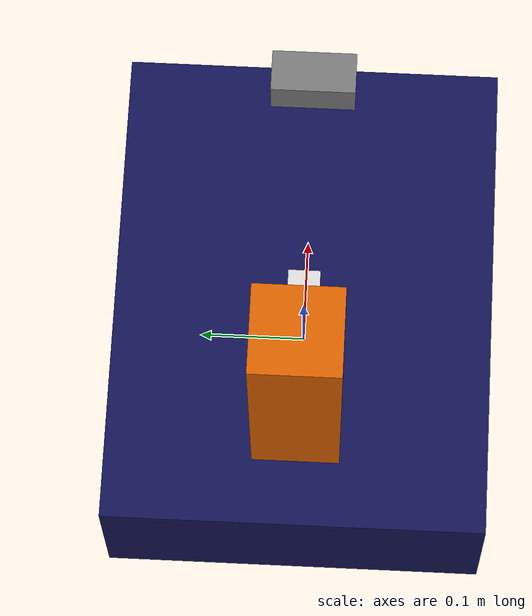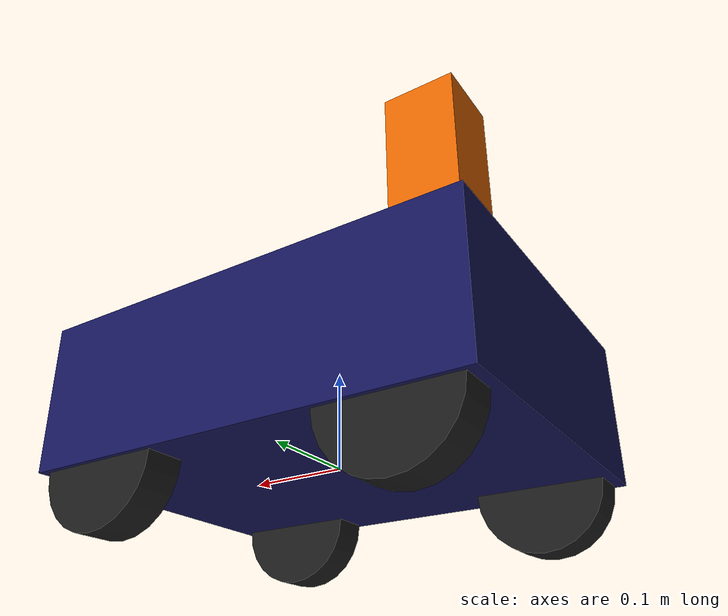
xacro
<?xml version="1.0"?>
<robot name="robot" xmlns:xacro="http://www.ros.org/wiki/xacro">

  <xacro:property name="base_length"  value="0.45"/>
  <xacro:property name="base_width"   value="0.35"/>
  <xacro:property name="base_height"  value="0.15"/>
  <xacro:property name="wheel_radius" value="0.065"/>
  <xacro:property name="wheel_width"  value="0.04"/>
  <xacro:property name="track_width"  value="0.30"/>
  <xacro:property name="wheel_x_off"  value="0.15"/>

  <!-- ================================================================
       base_footprint (punto en el suelo)
       ================================================================ -->
  <link name="base_footprint"/>

  <joint name="base_footprint_joint" type="fixed">
    <parent link="base_footprint"/>
    <child  link="base_link"/>
    <origin xyz="0 0 ${wheel_radius}" rpy="0 0 0"/>
  </joint>

  <!-- ================================================================
       Cuerpo principal
       ================================================================ -->
  <link name="base_link">
    <visual>
      <origin xyz="0 0 0" rpy="0 0 0"/>
      <geometry>
        <box size="${base_length} ${base_width} ${base_height}"/>
      </geometry>
      <material name="dark_blue">
        <color rgba="0.08 0.08 0.35 1.0"/>
      </material>
    </visual>
    <collision>
      <geometry>
        <box size="${base_length} ${base_width} ${base_height}"/>
      </geometry>
    </collision>
    <inertial>
      <mass value="6.0"/>
      <origin xyz="0 0 0"/>
      <inertia
        ixx="${(1/12)*6.0*(base_width*base_width + base_height*base_height)}"
        ixy="0" ixz="0"
        iyy="${(1/12)*6.0*(base_length*base_length + base_height*base_height)}"
        iyz="0"
        izz="${(1/12)*6.0*(base_length*base_length + base_width*base_width)}"/>
    </inertial>
  </link>

  <!-- ================================================================
       Macro rueda
       ================================================================ -->
  <xacro:macro name="wheel" params="name x_pos y_pos">

    <link name="${name}_link">
      <visual>
        <origin xyz="0 0 0" rpy="${pi/2} 0 0"/>
        <geometry>
          <cylinder radius="${wheel_radius}" length="${wheel_width}"/>
        </geometry>
        <material name="black">
          <color rgba="0.1 0.1 0.1 1.0"/>
        </material>
      </visual>
      <collision>
        <origin xyz="0 0 0" rpy="${pi/2} 0 0"/>
        <geometry>
          <cylinder radius="${wheel_radius}" length="${wheel_width}"/>
        </geometry>
      </collision>
      <inertial>
        <mass value="0.5"/>
        <origin xyz="0 0 0" rpy="${pi/2} 0 0"/>
        <inertia
          ixx="${(1/12)*0.5*(3*wheel_radius*wheel_radius + wheel_width*wheel_width)}"
          ixy="0" ixz="0"
          iyy="${(1/12)*0.5*(3*wheel_radius*wheel_radius + wheel_width*wheel_width)}"
          iyz="0"
          izz="${0.5*0.5*wheel_radius*wheel_radius}"/>
      </inertial>
    </link>

    <joint name="${name}_joint" type="continuous">
      <parent link="base_link"/>
      <child  link="${name}_link"/>
      <origin xyz="${x_pos} ${y_pos} ${-(base_height/2)}" rpy="0 0 0"/>
      <axis xyz="0 1 0"/>
    </joint>

    <gazebo reference="${name}_link">
      <mu1>1.0</mu1>
      <mu2>1.0</mu2>
      <kp>1e6</kp>
      <kd>1.0</kd>
      <material>Gazebo/DarkGrey</material>
    </gazebo>

  </xacro:macro>

  <xacro:wheel name="wheel_fl" x_pos=" ${wheel_x_off}" y_pos=" ${track_width/2}"/>
  <xacro:wheel name="wheel_fr" x_pos=" ${wheel_x_off}" y_pos="${-track_width/2}"/>
  <xacro:wheel name="wheel_rl" x_pos="${-wheel_x_off}" y_pos=" ${track_width/2}"/>
  <xacro:wheel name="wheel_rr" x_pos="${-wheel_x_off}" y_pos="${-track_width/2}"/>

  <!-- ================================================================
       Cámara
       ================================================================ -->
  <link name="camera_link">
    <visual>
      <geometry><box size="0.04 0.08 0.04"/></geometry>
      <material name="grey"><color rgba="0.5 0.5 0.5 1.0"/></material>
    </visual>
    <collision>
      <geometry><box size="0.04 0.08 0.04"/></geometry>
    </collision>
    <inertial>
      <mass value="0.05"/>
      <inertia ixx="0.0001" ixy="0" ixz="0" iyy="0.0001" iyz="0" izz="0.0001"/>
    </inertial>
  </link>

  <joint name="camera_joint" type="fixed">
    <parent link="base_link"/>
    <child  link="camera_link"/>
    <origin xyz="${base_length/2 - 0.02} 0 ${base_height/2 + 0.02}" rpy="0 0 0"/>
  </joint>

  <!-- Frame optico (Z adelante, X derecha) -->
  <link name="camera_optical_link"/>
  <joint name="camera_optical_joint" type="fixed">
    <parent link="camera_link"/>
    <child  link="camera_optical_link"/>
    <origin xyz="0 0 0" rpy="${-pi/2} 0 ${-pi/2}"/>
  </joint>

  <!-- ================================================================
       IMU
       ================================================================ -->
  <link name="imu_link">
    <inertial>
      <mass value="0.01"/>
      <inertia ixx="1e-6" ixy="0" ixz="0" iyy="1e-6" iyz="0" izz="1e-6"/>
    </inertial>
  </link>
  <joint name="imu_joint" type="fixed">
    <parent link="base_link"/>
    <child  link="imu_link"/>
    <origin xyz="0 0 0" rpy="0 0 0"/>
  </joint>

  <!-- ================================================================
       GPS
       ================================================================ -->
  <link name="gps_link">
    <visual>
      <geometry><box size="0.03 0.03 0.01"/></geometry>
      <material name="white"><color rgba="0.9 0.9 0.9 1.0"/></material>
    </visual>
    <inertial>
      <mass value="0.02"/>
      <inertia ixx="1e-6" ixy="0" ixz="0" iyy="1e-6" iyz="0" izz="1e-6"/>
    </inertial>
  </link>
  <joint name="gps_joint" type="fixed">
    <parent link="base_link"/>
    <child  link="gps_link"/>
    <origin xyz="0 0 ${base_height/2 + 0.01}" rpy="0 0 0"/>
  </joint>

  <!-- ================================================================
       Brazo SO101 (placeholder visual)
       ================================================================ -->
  <link name="arm_base_link">
    <visual>
      <geometry><box size="0.08 0.08 0.25"/></geometry>
      <material name="orange"><color rgba="0.9 0.4 0.0 1.0"/></material>
    </visual>
    <collision>
      <geometry><box size="0.08 0.08 0.25"/></geometry>
    </collision>
    <inertial>
      <mass value="0.8"/>
      <inertia ixx="0.005" ixy="0" ixz="0" iyy="0.005" iyz="0" izz="0.001"/>
    </inertial>
  </link>
  <joint name="arm_base_joint" type="fixed">
    <parent link="base_link"/>
    <child  link="arm_base_link"/>
    <origin xyz="${-base_length/2 + 0.1} 0 ${base_height/2 + 0.125}" rpy="0 0 0"/>
  </joint>

  <!-- ================================================================
       Gazebo — Plugin conduccion diferencial (4 ruedas)
       ================================================================ -->
  <gazebo>
    <plugin name="differential_drive" filename="libgazebo_ros_diff_drive.so">
      <ros>
        <remapping>cmd_vel:=cmd_vel</remapping>
        <remapping>odom:=odom</remapping>
      </ros>

      <!-- Gazebo Classic solo soporta un joint por lado.
           Las ruedas traseras giran pasivamente por friccion. -->
      <left_joint>wheel_fl_joint</left_joint>
      <right_joint>wheel_fr_joint</right_joint>

      <wheel_separation>${track_width}</wheel_separation>
      <wheel_diameter>${2 * wheel_radius}</wheel_diameter>
      <max_wheel_torque>20.0</max_wheel_torque>
      <max_wheel_acceleration>2.0</max_wheel_acceleration>

      <publish_odom>true</publish_odom>
      <publish_odom_tf>true</publish_odom_tf>
      <publish_wheel_tf>false</publish_wheel_tf>
      <odometry_frame>odom</odometry_frame>
      <robot_base_frame>base_footprint</robot_base_frame>
    </plugin>
  </gazebo>

  <!-- ================================================================
       Gazebo — Camara RGB
       ================================================================ -->
  <gazebo reference="camera_link">
    <sensor name="camera_sensor" type="camera">
      <always_on>true</always_on>
      <update_rate>30.0</update_rate>
      <visualize>true</visualize>
      <camera>
        <horizontal_fov>1.3962634</horizontal_fov>
        <image>
          <width>640</width>
          <height>480</height>
          <format>R8G8B8</format>
        </image>
        <clip><near>0.05</near><far>100.0</far></clip>
        <noise>
          <type>gaussian</type>
          <mean>0.0</mean>
          <stddev>0.005</stddev>
        </noise>
      </camera>
      <plugin name="camera_plugin" filename="libgazebo_ros_camera.so">
        <ros>
          <remapping>image_raw:=camera/image_raw</remapping>
          <remapping>camera_info:=camera/camera_info</remapping>
        </ros>
        <camera_name>camera</camera_name>
        <frame_name>camera_optical_link</frame_name>
      </plugin>
    </sensor>
  </gazebo>

  <gazebo reference="imu_link">
    <sensor name="imu_sensor" type="imu">
      <always_on>true</always_on>
      <update_rate>100.0</update_rate>
      <imu>
        <angular_velocity>
          <x><noise type="gaussian"><mean>0.0</mean><stddev>0.009</stddev><bias_mean>0.0</bias_mean><bias_stddev>0.0003</bias_stddev></noise></x>
          <y><noise type="gaussian"><mean>0.0</mean><stddev>0.009</stddev><bias_mean>0.0</bias_mean><bias_stddev>0.0003</bias_stddev></noise></y>
          <z><noise type="gaussian"><mean>0.0</mean><stddev>0.009</stddev><bias_mean>0.0</bias_mean><bias_stddev>0.0003</bias_stddev></noise></z>
        </angular_velocity>
        <linear_acceleration>
          <x><noise type="gaussian"><mean>0.0</mean><stddev>0.02</stddev><bias_mean>0.1</bias_mean><bias_stddev>0.001</bias_stddev></noise></x>
          <y><noise type="gaussian"><mean>0.0</mean><stddev>0.02</stddev><bias_mean>0.1</bias_mean><bias_stddev>0.001</bias_stddev></noise></y>
          <z><noise type="gaussian"><mean>0.0</mean><stddev>0.02</stddev><bias_mean>0.1</bias_mean><bias_stddev>0.001</bias_stddev></noise></z>
        </linear_acceleration>
      </imu>
      <plugin name="imu_plugin" filename="libgazebo_ros_imu_sensor.so">
        <ros>
          <remapping>~/out:=imu/data</remapping>
        </ros>
        <initial_orientation_as_reference>false</initial_orientation_as_reference>
      </plugin>
    </sensor>
  </gazebo>

  <gazebo reference="gps_link">
    <sensor name="gps_sensor" type="gps">
      <always_on>true</always_on>
      <update_rate>10.0</update_rate>
      <gps>
        <position_sensing>
          <horizontal>
            <noise type="gaussian">
              <mean>0.0</mean>
              <stddev>1.5</stddev>
            </noise>
          </horizontal>
          <vertical>
            <noise type="gaussian">
              <mean>0.0</mean>
              <stddev>2.0</stddev>
            </noise>
          </vertical>
        </position_sensing>
      </gps>
      <plugin name="gps_plugin" filename="libgazebo_ros_gps_sensor.so">
        <ros>
          <remapping>~/out:=gps/fix</remapping>
        </ros>
      </plugin>
    </sensor>
  </gazebo>

  <gazebo reference="base_link">
    <material>Gazebo/Blue</material>
  </gazebo>

</robot>
